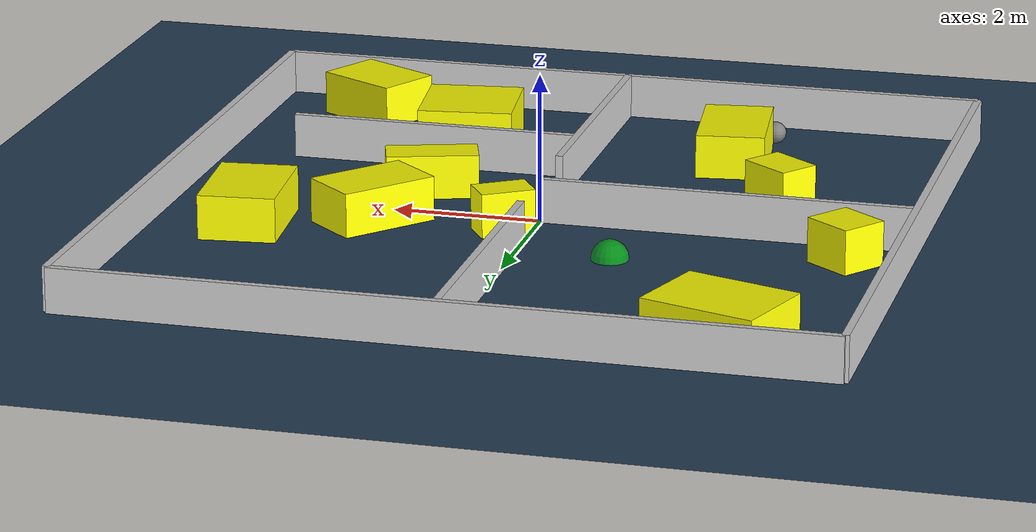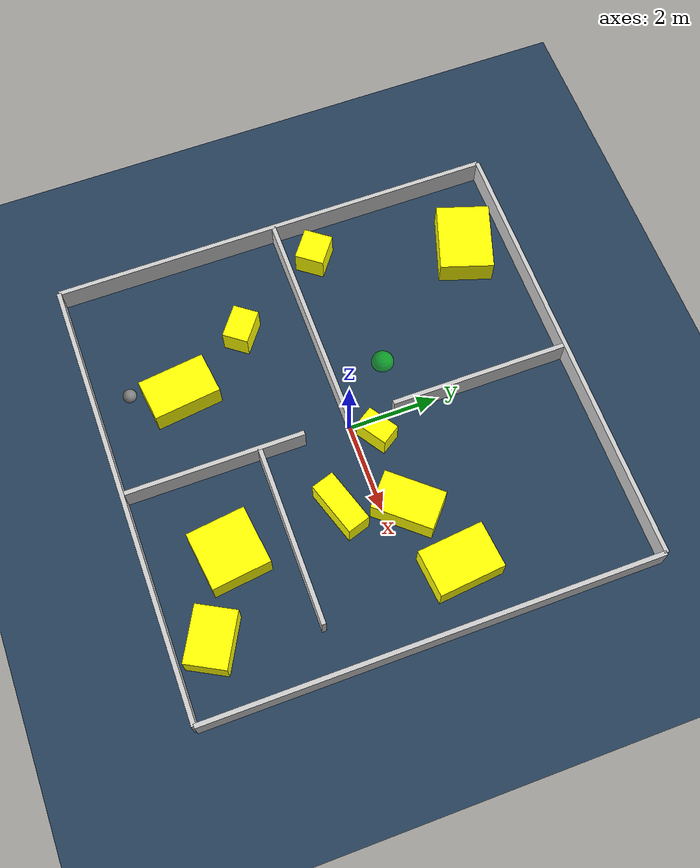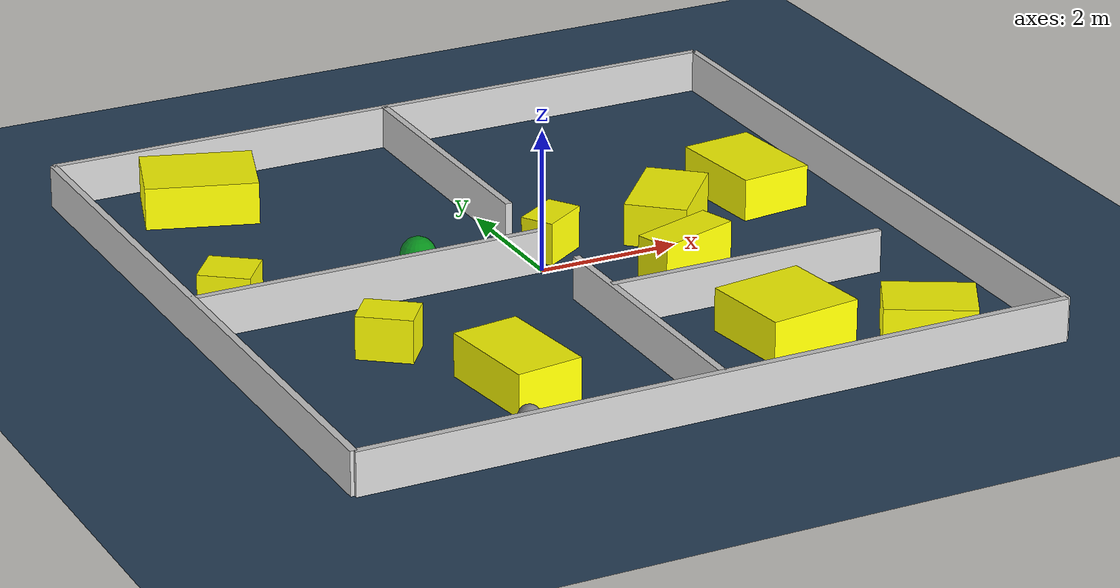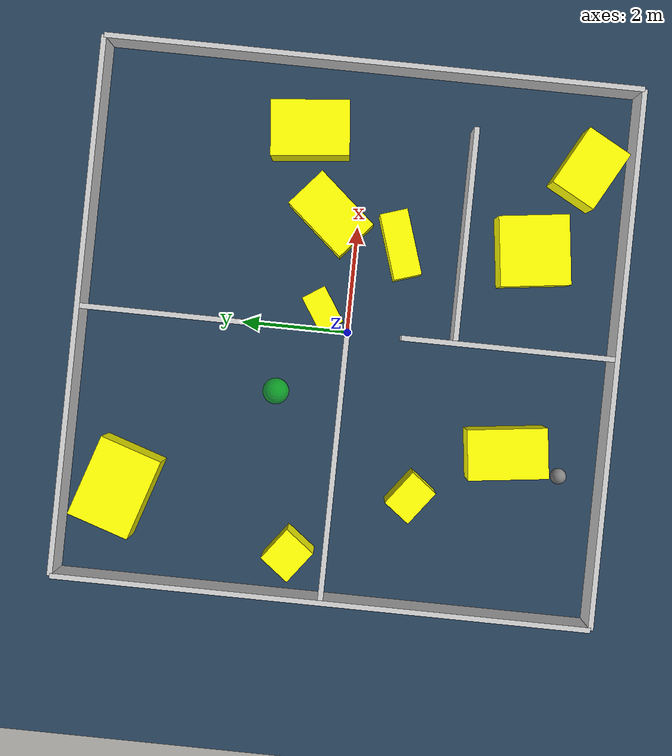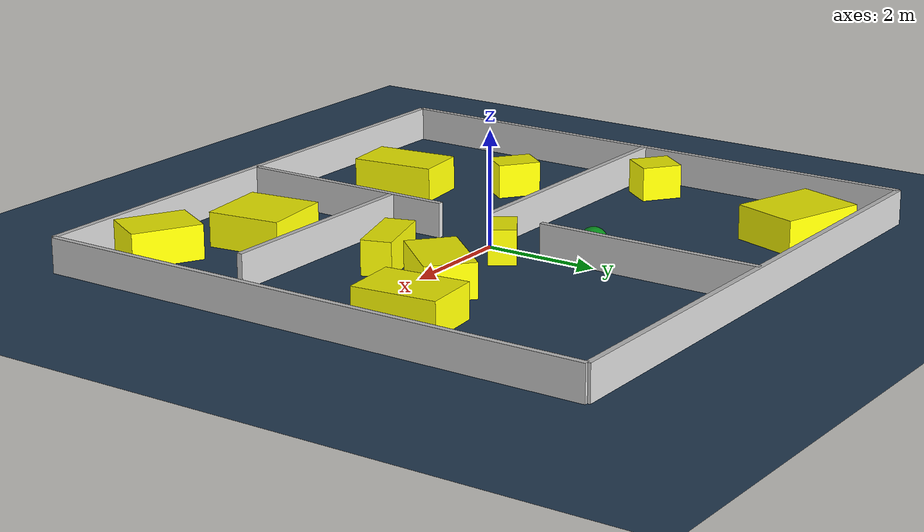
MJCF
<?xml version="1.0" ?>
<mujoco model="generated_environment">
  <option cone="elliptic" integrator="RK4" timestep="0.01"/>
  <default>
    <geom density="1"/>
  </default>
  <asset>
    <texture builtin="gradient" height="3072" rgb1="0.3 0.5 0.7" rgb2="0 0 0" type="skybox" width="512"/>
    <texture builtin="checker" height="300" mark="edge" markrgb="0.8 0.8 0.8" name="groundplane" rgb1="0.2 0.3 0.4" rgb2="0.1 0.2 0.3" type="2d" width="300"/>
    <material name="groundplane" reflectance="0.2" texrepeat="5 5" texture="groundplane" texuniform="true"/>
    <material name="robot" rgba="1.0 1.0 0.0 1.0"/>
  </asset>
  <worldbody>
    <light dir="0 0 -1" directional="true" pos="0 0 1.5"/>
    <geom condim="4" friction="0.5 0.005 0.001" material="groundplane" name="floor" size="0 0 0.05" type="plane"/>
    <body name="walls">
      <geom condim="4" name="wall_1" pos="-5.0 0.0 0.3" rgba="0.800000011920929 0.800000011920929 0.800000011920929 1.0" size="0.05 5.0 0.3" type="box"/>
      <geom condim="4" name="wall_2" pos="5.0 0.0 0.3" rgba="0.800000011920929 0.800000011920929 0.800000011920929 1.0" size="0.05 5.0 0.3" type="box"/>
      <geom condim="4" name="wall_3" pos="0.0 -5.0 0.3" rgba="0.800000011920929 0.800000011920929 0.800000011920929 1.0" size="5.0 0.05 0.3" type="box"/>
      <geom condim="4" name="wall_4" pos="0.0 5.0 0.3" rgba="0.800000011920929 0.800000011920929 0.800000011920929 1.0" size="5.0 0.05 0.3" type="box"/>
      <geom condim="4" name="wall_5" pos="0.0 3.0 0.3" rgba="0.800000011920929 0.800000011920929 0.800000011920929 1.0" size="0.05 2.0 0.3" type="box"/>
      <geom condim="4" name="wall_6" pos="-2.5 0.0 0.3" rgba="0.800000011920929 0.800000011920929 0.800000011920929 1.0" size="2.5 0.05 0.3" type="box"/>
      <geom condim="4" name="wall_7" pos="0.0 -3.0 0.3" rgba="0.800000011920929 0.800000011920929 0.800000011920929 1.0" size="0.05 2.0 0.3" type="box"/>
      <geom condim="4" name="wall_8" pos="2.0 -2.0 0.3" rgba="0.800000011920929 0.800000011920929 0.800000011920929 1.0" size="2.0 0.05 0.3" type="box"/>
    </body>
    <body name="robot">
      <joint axis="1 0 0" name="joint_x" pos="0 0 0" type="slide"/>
      <joint axis="0 1 0" name="joint_y" pos="0 0 0" type="slide"/>
      <geom condim="4" friction="1.0 0.005 0.0001" mass="5.0" name="robot" pos="-2.2920343127876084 -4.228235364322694 0.15" size="0.15 0.15 0.15" type="sphere"/>
    </body>
    <body name="obstacle_1_movable">
      <geom condim="4" euler="0 0 142.83629072304117" friction="0.0 0.005 0.001" mass="0.1" name="obstacle_1_movable" pos="-2.9137644512880865 -1.4631411363386557 0.3" rgba="1 1 0 1" size="0.3813995435791039 0.2880535344902678 0.3" type="box"/>
      <joint type="free"/>
    </body>
    <body name="obstacle_2_movable">
      <geom condim="4" euler="0 0 241.3683036642248" friction="0.0 0.005 0.001" mass="0.1" name="obstacle_2_movable" pos="3.4586275550102386 -4.1720978409157405 0.3" rgba="1 1 0 1" size="0.4515167086419769 0.6111317002380557 0.3" type="box"/>
      <joint type="free"/>
    </body>
    <body name="obstacle_3_movable">
      <geom condim="4" euler="0 0 6.972104833306947" friction="0.0 0.005 0.001" mass="0.1" name="obstacle_3_movable" pos="-1.9339031203112778 -3.1668390282831034 0.3" rgba="1 1 0 1" size="0.46873611570554313 0.7451573018558575 0.3" type="box"/>
      <joint type="free"/>
    </body>
    <body name="obstacle_4_movable">
      <geom condim="4" euler="0 0 52.82228696609165" friction="0.0 0.005 0.001" mass="0.1" name="obstacle_4_movable" pos="-4.196626187885854 0.6916168739510393 0.3" rgba="1 1 0 1" size="0.32697686960003547 0.3593279956233357 0.3" type="box"/>
      <joint type="free"/>
    </body>
    <body name="obstacle_5_movable">
      <geom condim="4" euler="0 0 17.983245220591378" friction="0.0 0.005 0.001" mass="0.1" name="obstacle_5_movable" pos="1.7127217594014876 -0.817631150543928 0.3" rgba="1 1 0 1" size="0.6198550160125588 0.26140065729669554 0.3" type="box"/>
      <joint type="free"/>
    </body>
    <body name="obstacle_6_movable">
      <geom condim="4" euler="0 0 161.9683680527786" friction="0.0 0.005 0.001" mass="0.1" name="obstacle_6_movable" pos="-3.2716511446562047 3.9797195540633297 0.3" rgba="1 1 0 1" size="0.7789040282890314 0.5980648986910689 0.3" type="box"/>
      <joint type="free"/>
    </body>
    <body name="obstacle_7_movable">
      <geom condim="4" euler="0 0 5.695647424760262" friction="0.0 0.005 0.001" mass="0.1" name="obstacle_7_movable" pos="3.6839780927568846 1.0592772134439246 0.3" rgba="1 1 0 1" size="0.5162348613545656 0.7315652595864648 0.3" type="box"/>
      <joint type="free"/>
    </body>
    <body name="obstacle_8_movable">
      <geom condim="4" euler="0 0 7.156848182326412" friction="0.0 0.005 0.001" mass="0.1" name="obstacle_8_movable" pos="1.8494549529393947 -3.285881406869448 0.3" rgba="1 1 0 1" size="0.6532778315614799 0.6523257130767479 0.3" type="box"/>
      <joint type="free"/>
    </body>
    <body name="obstacle_9_movable">
    <geom condim="4" euler="0 0 303.13112124945803" friction="0.0 0.005 0.001" mass="0.1" name="obstacle_9_movable" pos="0.373400765627804 0.49412566739948716 0.3" rgba="1 1 0 1" size="0.23698389281247676 0.36772664056182756 0.3" type="box"/>
      <joint type="free"/>
    </body>
    <body name="obstacle_10_movable">
      <geom condim="4" euler="0 0 49.123881237846604" friction="0.0 0.005 0.001" mass="0.1" name="obstacle_10_movable" pos="2.145380058250196 0.5165422099541299 0.3" rgba="1 1 0 1" size="0.6842631173712675 0.4327163864385031 0.3" type="box"/>
      <joint type="free"/>
    </body>
    <site name="goal" pos="-1.240695909920285 1.2388021920559407 0.0" rgba="0 1 0 0.5" size="0.25 0.25 0.25" type="sphere"/>
  </worldbody>
  <actuator>
    <velocity kv="50" ctrlrange="-0.5 0.5" forcerange="-20 20" joint="joint_x" name="actuator_x"/>
    <velocity kv="50" ctrlrange="-0.5 0.5" forcerange="-20 20" joint="joint_y" name="actuator_y"/>
  </actuator>
</mujoco>
